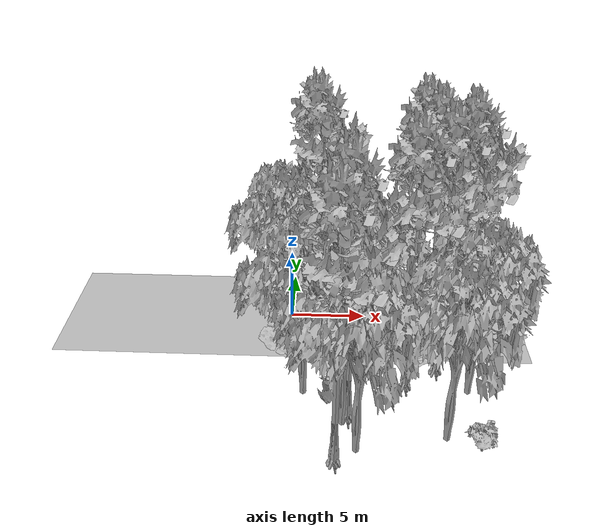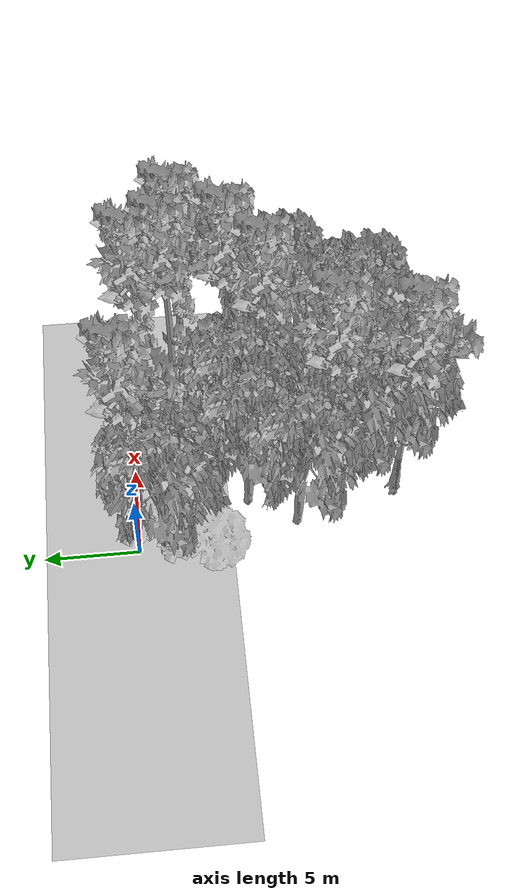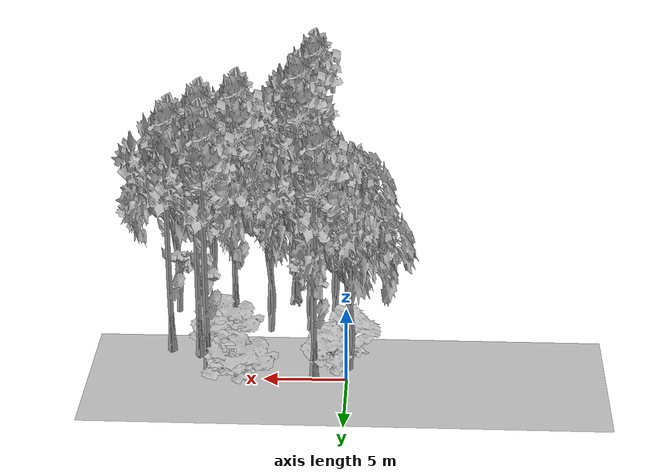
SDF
<sdf version="1.7">
 <world name="default">
  <model name="ground_plane">
   <static>1</static>
   <link name="link">
    <collision name="collision">
     <pose>-50 0 0 0 -0 0</pose>
     <geometry><plane><normal>0 0 1</normal><size>100 100</size></plane></geometry>
     <surface><contact><ode><min_depth>0.01</min_depth><max_vel>0</max_vel></ode></contact></surface>
    </collision>
    <visual name="grass">
     <cast_shadows>0</cast_shadows>
     <geometry>
      <mesh>
       <scale>0.5814285714285714 0.18142857142857144 0.1</scale>
       <uri>file://grass_plane/meshes/grass_plane.dae</uri>
      </mesh>
     </geometry>
    </visual>
   </link>
  </model>
  <model name="Tree 12">
   <static>1</static>
   <pose>1.9493568093408271 -0.15671179720794726 0 1.57079 -0 0</pose>
   <link name="link">
    <collision name="collision">
     <geometry><mesh><scale>3.5 5 3.5</scale><uri>model://tree_9/meshes/tree_9.obj</uri></mesh></geometry>
    </collision>
    <visual name="visual">
     <geometry><mesh><scale>3.5 5 3.5</scale><uri>model://tree_9/meshes/tree_9.obj</uri></mesh></geometry>
    </visual>
   </link>
  </model>
  <model name="Tree 27">
   <static>1</static>
   <pose>6.53860164202807 -0.5497911031416312 0 1.57079 -0 0</pose>
   <link name="link">
    <collision name="collision">
     <geometry><mesh><scale>3 2 3</scale><uri>model://tree_3/meshes/tree_3.obj</uri></mesh></geometry>
    </collision>
    <visual name="visual">
     <geometry><mesh><scale>3 2 3</scale><uri>model://tree_3/meshes/tree_3.obj</uri></mesh></geometry>
    </visual>
   </link>
  </model>
  <model name="Tree 52">
   <static>1</static>
   <pose>4.874005939611514 -5.725399467528021 0 1.57079 -0 0</pose>
   <link name="link">
    <collision name="collision">
     <geometry><mesh><scale>3.5 5 3.5</scale><uri>model://tree_2/meshes/tree_2.obj</uri></mesh></geometry>
    </collision>
    <visual name="visual">
     <geometry><mesh><scale>3.5 5 3.5</scale><uri>model://tree_2/meshes/tree_2.obj</uri></mesh></geometry>
    </visual>
   </link>
  </model>
  <model name="Tree 62">
   <static>1</static>
   <pose>2.4264584241604865 -5.945859515981043 0 1.57079 -0 0</pose>
   <link name="link">
    <collision name="collision">
     <geometry><mesh><scale>3.5 5 3.5</scale><uri>model://tree_2/meshes/tree_2.obj</uri></mesh></geometry>
    </collision>
    <visual name="visual">
     <geometry><mesh><scale>3.5 5 3.5</scale><uri>model://tree_2/meshes/tree_2.obj</uri></mesh></geometry>
    </visual>
   </link>
  </model>
  <model name="Tree 65">
   <static>1</static>
   <pose>-0.3443051520950533 -3.6735498750197753 0 1.57079 -0 0</pose>
   <link name="link">
    <collision name="collision">
     <geometry><mesh><scale>4 2.5 4</scale><uri>model://tree_1/meshes/tree_1.obj</uri></mesh></geometry>
    </collision>
    <visual name="visual">
     <geometry><mesh><scale>4 2.5 4</scale><uri>model://tree_1/meshes/tree_1.obj</uri></mesh></geometry>
    </visual>
   </link>
  </model>
  <model name="Tree 72">
   <static>1</static>
   <pose>7.785652415691899 -4.934700376869326 0 1.57079 -0 0</pose>
   <link name="link">
    <collision name="collision">
     <geometry><mesh><scale>3 2 3</scale><uri>model://tree_3/meshes/tree_3.obj</uri></mesh></geometry>
    </collision>
    <visual name="visual">
     <geometry><mesh><scale>3 2 3</scale><uri>model://tree_3/meshes/tree_3.obj</uri></mesh></geometry>
    </visual>
   </link>
  </model>
  <model name="Tree 85">
   <static>1</static>
   <pose>0.8469695697537247 -1.5333780740357135 0 1.57079 -0 0</pose>
   <link name="link">
    <collision name="collision">
     <geometry><mesh><scale>4 2.5 4</scale><uri>model://tree_1/meshes/tree_1.obj</uri></mesh></geometry>
    </collision>
    <visual name="visual">
     <geometry><mesh><scale>4 2.5 4</scale><uri>model://tree_1/meshes/tree_1.obj</uri></mesh></geometry>
    </visual>
   </link>
  </model>
  <model name="Tree 86">
   <static>1</static>
   <pose>9.425787152612315 -5.561654688300413 0 1.57079 -0 0</pose>
   <link name="link">
    <collision name="collision">
     <geometry><mesh><scale>3.5 5 3.5</scale><uri>model://tree_9/meshes/tree_9.obj</uri></mesh></geometry>
    </collision>
    <visual name="visual">
     <geometry><mesh><scale>3.5 5 3.5</scale><uri>model://tree_9/meshes/tree_9.obj</uri></mesh></geometry>
    </visual>
   </link>
  </model>
  <model name="Tree 148">
   <static>1</static>
   <pose>9.235538737940303 -12.086095247946405 0 1.57079 -0 0</pose>
   <link name="link">
    <collision name="collision">
     <geometry><mesh><scale>3.5 5 3.5</scale><uri>model://tree_2/meshes/tree_2.obj</uri></mesh></geometry>
    </collision>
    <visual name="visual">
     <geometry><mesh><scale>3.5 5 3.5</scale><uri>model://tree_2/meshes/tree_2.obj</uri></mesh></geometry>
    </visual>
   </link>
  </model>
  <model name="Tree 225">
   <static>1</static>
   <pose>-0.2630937348884501 -1.3498957156352382 0 1.57079 -0 0</pose>
   <link name="link">
    <collision name="collision">
     <geometry><mesh><scale>3.5 5 3.5</scale><uri>model://tree_2/meshes/tree_2.obj</uri></mesh></geometry>
    </collision>
    <visual name="visual">
     <geometry><mesh><scale>3.5 5 3.5</scale><uri>model://tree_2/meshes/tree_2.obj</uri></mesh></geometry>
    </visual>
   </link>
  </model>
  <model name="Tree 245">
   <static>1</static>
   <pose>7.360658377266354 -7.192690888282468 0 1.57079 -0 0</pose>
   <link name="link">
    <collision name="collision">
     <geometry><mesh><scale>3.5 5 3.5</scale><uri>model://tree_9/meshes/tree_9.obj</uri></mesh></geometry>
    </collision>
    <visual name="visual">
     <geometry><mesh><scale>3.5 5 3.5</scale><uri>model://tree_9/meshes/tree_9.obj</uri></mesh></geometry>
    </visual>
   </link>
  </model>
  <model name="Tree 261">
   <static>1</static>
   <pose>6.639118150222195 -0.4025475482094656 0 1.57079 -0 0</pose>
   <link name="link">
    <collision name="collision">
     <geometry><mesh><scale>4 2.5 4</scale><uri>model://tree_1/meshes/tree_1.obj</uri></mesh></geometry>
    </collision>
    <visual name="visual">
     <geometry><mesh><scale>4 2.5 4</scale><uri>model://tree_1/meshes/tree_1.obj</uri></mesh></geometry>
    </visual>
   </link>
  </model>
  <model name="Tree 273">
   <static>1</static>
   <pose>8.47984127325698 -0.9648792487045537 0 1.57079 -0 0</pose>
   <link name="link">
    <collision name="collision">
     <geometry><mesh><scale>3.5 5 3.5</scale><uri>model://tree_9/meshes/tree_9.obj</uri></mesh></geometry>
    </collision>
    <visual name="visual">
     <geometry><mesh><scale>3.5 5 3.5</scale><uri>model://tree_9/meshes/tree_9.obj</uri></mesh></geometry>
    </visual>
   </link>
  </model>
  <model name="Tree 329">
   <static>1</static>
   <pose>9.131906312621894 -2.5055163699969913 0 1.57079 -0 0</pose>
   <link name="link">
    <collision name="collision">
     <geometry><mesh><scale>3.5 5 3.5</scale><uri>model://tree_9/meshes/tree_9.obj</uri></mesh></geometry>
    </collision>
    <visual name="visual">
     <geometry><mesh><scale>3.5 5 3.5</scale><uri>model://tree_9/meshes/tree_9.obj</uri></mesh></geometry>
    </visual>
   </link>
  </model>
  <model name="Tree 342">
   <static>1</static>
   <pose>4.061550281120205 -13.250284901763203 0 1.57079 -0 0</pose>
   <link name="link">
    <collision name="collision">
     <geometry><mesh><scale>3.5 5 3.5</scale><uri>model://tree_2/meshes/tree_2.obj</uri></mesh></geometry>
    </collision>
    <visual name="visual">
     <geometry><mesh><scale>3.5 5 3.5</scale><uri>model://tree_2/meshes/tree_2.obj</uri></mesh></geometry>
    </visual>
   </link>
  </model>
  <model name="Tree 356">
   <static>1</static>
   <pose>2.9364515999909884 -13.902948158466089 0 1.57079 -0 0</pose>
   <link name="link">
    <collision name="collision">
     <geometry><mesh><scale>3.5 5 3.5</scale><uri>model://tree_9/meshes/tree_9.obj</uri></mesh></geometry>
    </collision>
    <visual name="visual">
     <geometry><mesh><scale>3.5 5 3.5</scale><uri>model://tree_9/meshes/tree_9.obj</uri></mesh></geometry>
    </visual>
   </link>
  </model>
  <model name="Tree 380">
   <static>1</static>
   <pose>0.9542678513121743 -8.421992559852537 0 1.57079 -0 0</pose>
   <link name="link">
    <collision name="collision">
     <geometry><mesh><scale>3.5 5 3.5</scale><uri>model://tree_2/meshes/tree_2.obj</uri></mesh></geometry>
    </collision>
    <visual name="visual">
     <geometry><mesh><scale>3.5 5 3.5</scale><uri>model://tree_2/meshes/tree_2.obj</uri></mesh></geometry>
    </visual>
   </link>
  </model>
  <model name="Tree 381">
   <static>1</static>
   <pose>7.925478742615226 -4.197645946113548 0 1.57079 -0 0</pose>
   <link name="link">
    <collision name="collision">
     <geometry><mesh><scale>4 2.5 4</scale><uri>model://tree_1/meshes/tree_1.obj</uri></mesh></geometry>
    </collision>
    <visual name="visual">
     <geometry><mesh><scale>4 2.5 4</scale><uri>model://tree_1/meshes/tree_1.obj</uri></mesh></geometry>
    </visual>
   </link>
  </model>
  <model name="Tree 383">
   <static>1</static>
   <pose>3.708204963861405 -10.276569609825511 0 1.57079 -0 0</pose>
   <link name="link">
    <collision name="collision">
     <geometry><mesh><scale>3.5 5 3.5</scale><uri>model://tree_9/meshes/tree_9.obj</uri></mesh></geometry>
    </collision>
    <visual name="visual">
     <geometry><mesh><scale>3.5 5 3.5</scale><uri>model://tree_9/meshes/tree_9.obj</uri></mesh></geometry>
    </visual>
   </link>
  </model>
  <model name="Tree 426">
   <static>1</static>
   <pose>3.2837655503825474 -11.054359196640096 0 1.57079 -0 0</pose>
   <link name="link">
    <collision name="collision">
     <geometry><mesh><scale>3.5 5 3.5</scale><uri>model://tree_2/meshes/tree_2.obj</uri></mesh></geometry>
    </collision>
    <visual name="visual">
     <geometry><mesh><scale>3.5 5 3.5</scale><uri>model://tree_2/meshes/tree_2.obj</uri></mesh></geometry>
    </visual>
   </link>
  </model>
  <model name="Tree 506">
   <static>1</static>
   <pose>10.998888789853766 -7.971708271004747 0 1.57079 -0 0</pose>
   <link name="link">
    <collision name="collision">
     <geometry><mesh><scale>3.5 5 3.5</scale><uri>model://tree_2/meshes/tree_2.obj</uri></mesh></geometry>
    </collision>
    <visual name="visual">
     <geometry><mesh><scale>3.5 5 3.5</scale><uri>model://tree_2/meshes/tree_2.obj</uri></mesh></geometry>
    </visual>
   </link>
  </model>
  <model name="Tree 530">
   <static>1</static>
   <pose>10.93816742679715 -3.0752047247507868 0 1.57079 -0 0</pose>
   <link name="link">
    <collision name="collision">
     <geometry><mesh><scale>3.5 5 3.5</scale><uri>model://tree_9/meshes/tree_9.obj</uri></mesh></geometry>
    </collision>
    <visual name="visual">
     <geometry><mesh><scale>3.5 5 3.5</scale><uri>model://tree_9/meshes/tree_9.obj</uri></mesh></geometry>
    </visual>
   </link>
  </model>
  <model name="Bush 2">
   <static>1</static>
   <pose>11.151075217085037 -12.939614915904782 0 1.57079 -0 0</pose>
   <link name="link">
    <collision name="collision">
     <geometry><mesh><scale>2 2 2</scale><uri>model://bush_1/meshes/bush_1.obj</uri></mesh></geometry>
     <surface><contact><collide_without_contact>false</collide_without_contact></contact></surface>
    </collision>
    <visual name="visual">
     <geometry><mesh><scale>2 2 2</scale><uri>model://bush_1/meshes/bush_1.obj</uri></mesh></geometry>
    </visual>
   </link>
  </model>
 </world>
</sdf>
